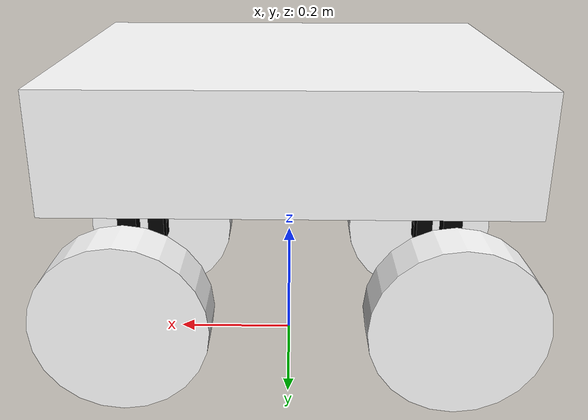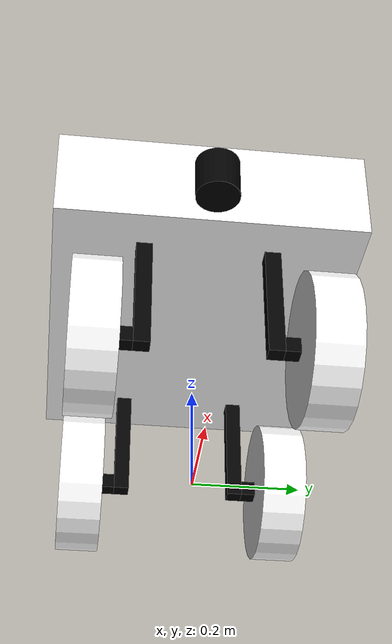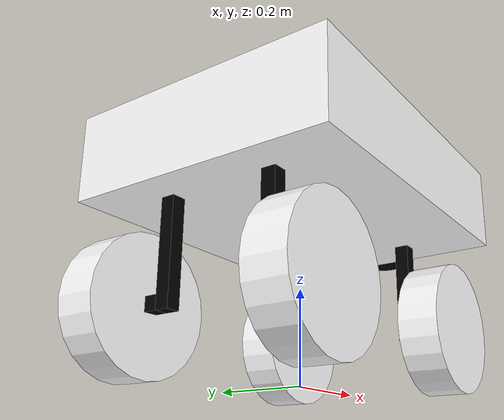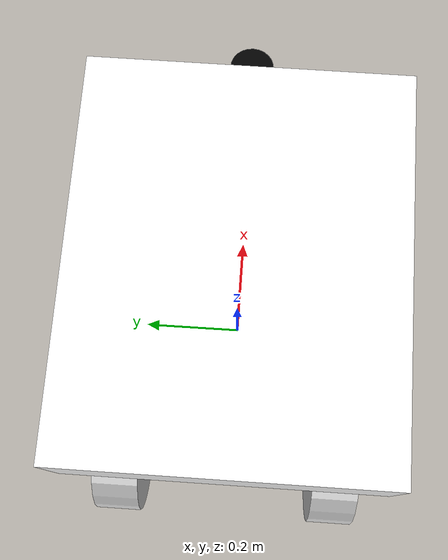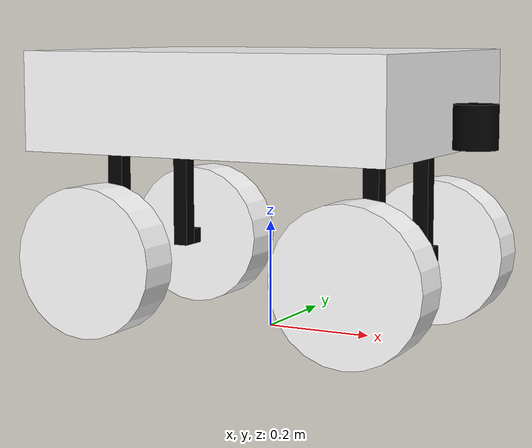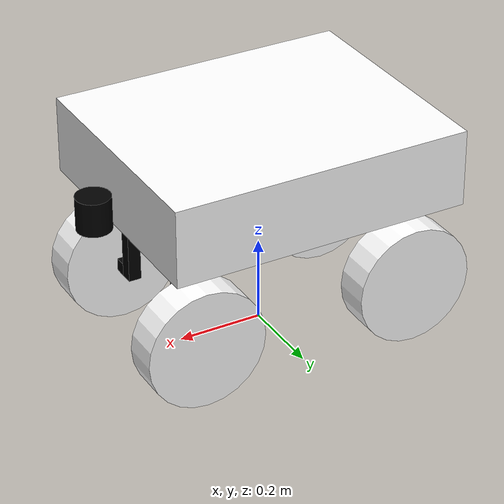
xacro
<?xml version="1.0"?>
<robot name="omnidirectional_four-wheeled_robot" xmlns:xacro="http://www.ros.org/wiki/xacro">
<xacro:property name="x_size" value="0.70"/>			<!-- 整个车的长 -->
<xacro:property name="y_size" value="0.57"/>			<!-- 整个车的宽 -->
<xacro:property name="z_size" value="0.18"/>			<!-- 车体上半身的高度 -->
<xacro:property name="body_mass" value="30.0"/>
<xacro:property name="cylinder_radius" value="0.14"/>	<!-- 轮子的半径 -->
<xacro:property name="cylinder_length" value="0.085"/>	<!-- 轮子的宽度 -->
<xacro:property name="wheel_mass" value="0.5"/>
<xacro:property name="effort_limit" value="1."/>
<xacro:property name="velocity_limit" value="5."/>
<xacro:property name="control_period" value="0.001"/>

<xacro:include filename="$(find robot_description)/urdf/wheel_new.urdf.xacro"/>
<!-- xacro:include filename="$(find omnidirectional_four-wheeled_robot)/urdf/camera.urdf.xacro"/ -->
<!-- xacro:include filename="$(find robot_description)/urdf/laser.urdf.xacro"/ -->
	<link name="base_link"/>
	<joint name="body_base_joint" type="fixed">
		<origin xyz="0. 0. 0.43" rpy="0. 0. 0."/>  <!-- 0.44 = 0.14(轮子半径)+0.22(杆的长度)+0.09(车体上身的一半)-0.03(轮子半径和杆多的一部分) -->
		<parent link="base_link"/>
		<child link="body_link"/>
		<calibration rising="0."/>
		<dynamics damping="0." friction="0."/>
	</joint>
	<link name="body_link">
		<visual>
			<origin xyz="0. 0. 0." rpy="0.0 0.0 0.0" />
			<geometry>
				<box size="${x_size} ${y_size} ${z_size}"/>
			</geometry>
			<material name="White">
				<color rgba="1. 1. 1. 1."/>
			</material>
		</visual>

		<collision>
			<geometry>
				<box size="${x_size} ${y_size} ${z_size}"/>
			</geometry>
		</collision>

		<inertial>
			<origin xyz="0. 0. 0."/>
			<mass value="${body_mass}"/>
			<inertia ixx="${body_mass * (y_size**2 + z_size**2) / 12}" ixy="0." ixz="0."
					 iyy="${body_mass * (x_size**2 + z_size**2) / 12}" iyz="0."
					 izz="${body_mass * (x_size**2 + y_size**2) / 12}"/>
		</inertial>
	</link>

	<joint name="laser_joint" type="fixed">
		<!--origin xyz="${x_size/2 - 0.04} 0. ${z_size/2 + 0.03955}" rpy="0. 0. 0."/-->
		<!-- ${z_size/2 - 0.16} -->
        <origin xyz="${x_size/2 + 0.05} 0. 0.39" rpy="0. 0. 0."/>
		<parent link="base_link"/>
		<child link="laser"/>
		<calibration rising="0."/>
		<dynamics damping="0." friction="0."/>
	</joint>

	<link name="laser">
		<visual>
			<origin xyz="0.0 0.0 0.0" rpy="0.0 0.0 0.0" />
			<geometry>
				<cylinder radius="0.04" length="0.0791"/>
			</geometry>
			<material name="Black">
				<color rgba="0. 0. 0. 1."/>
			</material>
		</visual>

		<collision>
			<geometry>
				<box size="0.05 0.05 0.05"/>
			</geometry>
		</collision>

		<inertial>
			<origin xyz="0. 0. 0."/>
			<mass value="0."/>
			<inertia ixx="0." ixy="0." ixz="0." iyy="0." iyz="0." izz="0."/>
		</inertial>
	</link>

	<!-- x_pos这里的 0.12 = 轮子半径  -->
	<!-- y_pos这里的 0.15 = 0.08(轮子的宽) + 0.03(link2的长) + 0.03(link1的宽) -->
	<!-- y_add这里的0.03 = 管的宽度 -->
	<!-- y_add_2这里的0.055 = 0.015(管长度一半) + 0.04(轮子宽度) -->
	<xacro:wheel_macro suffix="FLwheel" parent="body_link" x_pos="${x_size/2 - 0.09}"  y_pos="${y_size/2 - 0.092 - 0.03 - 0.045}" y_add="0.03" y_add_2="0.055"/>
	<xacro:wheel_macro suffix="FRwheel" parent="body_link" x_pos="${x_size/2 - 0.09}"  y_pos="${-y_size/2 + 0.092 + 0.03 + 0.045}" y_add="-0.03" y_add_2="-0.055"/>
	<xacro:wheel_macro suffix="BLwheel" parent="body_link" x_pos="${-x_size/2 + 0.09}" y_pos="${y_size/2 - 0.092 - 0.03 - 0.045}" y_add="0.03" y_add_2="0.055"/>
	<xacro:wheel_macro suffix="BRwheel" parent="body_link" x_pos="${-x_size/2 + 0.09}" y_pos="${-y_size/2 + 0.092 + 0.03 + 0.045}" y_add="-0.03" y_add_2="-0.055"/>

	<gazebo reference="body_link">
		<selfCollide>false</selfCollide>
		<mu1 value="0.05"/>
		<mu2 value="0.05"/>
	</gazebo>
	<gazebo reference="laser">
		<sensor type="ray" name="laser_sensor">
			<pose>0. 0. 0. 0. 0. 0.</pose>
			<visualize>true</visualize>
			<update_rate>40.</update_rate>
			<ray>
				<scan>
					<horizontal>
						<samples>1080</samples>
						<resolution>0.25</resolution>
						<min_angle>${-3*pi/4}</min_angle>
						<max_angle>${3*pi/4}</max_angle>
					</horizontal>
				</scan>
				<range>
					<min>0.1</min>
					<max>30.</max>
					<resolution>1.e-3</resolution>
				</range>
				<noise>
					<!-- Noise parameters based on published spec for Hokuyo laser 			-->
					<!-- achieving "+-30mm" accuracy at range < 10m.  A mean of 0.0m and 		-->
					<!-- stddev of 0.01m will put 99.7% of samples within 0.03m of the true 	-->
					<!-- reading. 																	-->
					<type>gaussian</type>
					<mean>0.</mean>
					<stddev>1.e-3</stddev>
				</noise>
			</ray>
			<plugin name="gazebo_ros_head_hokuyo_controller" filename="libgazebo_ros_laser.so">
				<topicName>/scan</topicName>
				<frameName>laser</frameName>
			</plugin>
		</sensor>
	</gazebo>
	<gazebo>
		<plugin name="gazebo_ros_control" filename="libgazebo_ros_control.so">
			<controlPeriod>${control_period}</controlPeriod>
			<legacyModeNS>true</legacyModeNS>
			<robotParam>/robot_description</robotParam>
			<robotNamespace>/omnidirectional_four_wheeled_robot</robotNamespace>
			<robotSimType>gazebo_ros_control/DefaultRobotHWSim</robotSimType>
		</plugin>
		<plugin name="imu_plugin" filename="libgazebo_ros_imu.so"> <!-- can delete IMU -->
			<alwaysOn>true</alwaysOn>
			<bodyName>body_link</bodyName>
			<topicName>/imu</topicName>
			<serviceName>imu_service</serviceName>
			<gaussianNoise>1.e-3</gaussianNoise>
			<updateRate>50.</updateRate>
		</plugin>
	</gazebo>
</robot>

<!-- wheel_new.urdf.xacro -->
<robot xmlns:xacro="http://www.ros.org/wiki/xacro">
	<xacro:macro name="wheel_macro" params="suffix parent x_pos y_pos y_add y_add_2">

		<joint name="${suffix}_joint1" type="continuous">
			<origin xyz="${x_pos} ${y_pos} -0.20" rpy="0. 0. 0."/> <!--这里的-0.20 = -0.09(车体上半身的一半) - 0.11(link1管的1半)-->
			<axis xyz="0. 0. 1."/>
			<parent link="${parent}"/>
			<child link="${suffix}_link1"/>

			<calibration rising="0."/>
			<dynamics damping="1." friction="0."/>
			<inertial>
				<origin xyz="${x_pos} ${y_pos} -0.25" rpy="0 0 0"/>
				<mass value="0.1"/>
				<inertia ixx="0.0" ixy="0.0" ixz="0.0" iyy="0.0" iyz="0.0" izz="0.0"/>
			</inertial>
		</joint>

		<link name="${suffix}_link1">
			<visual>
				<origin xyz="0. 0. 0." rpy="0. 0. 0."/>
				<geometry>
					<box size="0.03 0.03 0.22"/>
				</geometry>
				<material name="Black">
					<color rgba="0. 0. 0. 0"/>
				</material>
			</visual>
			<collision>
				<geometry>
					<box size="0.03 0.03 0.22"/>
				</geometry>
			</collision>
			<inertial>
				<origin xyz="0. 0. 0." rpy="0 0 0"/>
				<mass value="0.1"/>
				<inertia ixx="0.1" ixy="0.1" ixz="0.1" iyy="0.1" iyz="0.1" izz="0.1"/>
			</inertial>
		</link>

		<joint name="${suffix}_joint2" type="fixed">
			<origin xyz="0 ${y_add} -0.095" rpy="0. 0. 0."/>
			<parent link="${suffix}_link1"/>
			<child link="${suffix}_link2"/>
			<calibration rising="0."/>
			<dynamics damping="0." friction="0."/>
			<inertial>
				<origin xyz="0 ${y_add} -0.085" rpy="0 0 0"/>
				<mass value="0.1"/>
				<inertia ixx="0.0" ixy="0.0" ixz="0.0" iyy="0.0" iyz="0.0" izz="0.0"/>
			</inertial>
		</joint>

		<link name="${suffix}_link2">
			<visual>
				<origin xyz="0. 0. 0." rpy="0. 0. 0."/>
				<geometry>
					<box size="0.03 0.03 0.03"/>
				</geometry>
				<material name="Black">
					<color rgba="0. 0. 0. 1"/>
				</material>
			</visual>
			<collision>
				<geometry>
					<box size="0.03 0.03 0.03"/>
				</geometry>
			</collision>
			<inertial>
				<origin xyz="0. 0. 0." rpy="0 0 0"/>
				<mass value="0.1"/>
				<inertia ixx="0.1" ixy="0.1" ixz="0.1" iyy="0.1" iyz="0.1" izz="0.1"/>
			</inertial>
		</link>

		<joint name="${suffix}_joint3" type="continuous">
			<origin xyz="0 ${y_add_2} 0" rpy="0. 0. 0."/>
			<axis xyz="0. 1. 0."/>
			<parent link="${suffix}_link2"/>
			<child link="${suffix}_link3"/>
			<calibration rising="0."/>
			<dynamics damping="1." friction="0."/>
			<inertial>
				<origin xyz="0 ${y_add_2} 0" rpy="0 0 0"/>
				<mass value="0.1"/>
				<inertia ixx="0.0" ixy="0.0" ixz="0.0" iyy="0.0" iyz="0.0" izz="0.0"/>
			</inertial>
		</joint>

		<link name="${suffix}_link3">
			<visual>
				<origin xyz="0. 0. 0." rpy="-${pi/2} 0. 0."/>
				<geometry>
					<cylinder radius="${cylinder_radius}" length="${cylinder_length}"/>
				</geometry>
				<material name="White">
					<color rgba="1. 1. 1. 1."/>
				</material>
			</visual>
			<collision>
				<origin xyz="0. 0. 0." rpy="-${pi/2} 0. 0."/>
				<geometry>
					<cylinder radius="${cylinder_radius}" length="${cylinder_length}"/>
				</geometry>
			</collision>
			<inertial>
				<origin xyz="0. 0. 0." rpy="-${pi/2} 0. 0."/>
				<mass value="${wheel_mass}"/>
				<inertia ixx="${wheel_mass * cylinder_radius**2 / 2}" ixy="0." ixz="0."
						  	 iyy="${wheel_mass * (cylinder_radius**2 / 4 + cylinder_length**2 / 12)}" iyz="0."
						 	 	 izz="${wheel_mass * (cylinder_radius**2 / 4 + cylinder_length**2 / 12)}"/>
			</inertial>
		</link>

		<transmission name="${suffix}_trans1">
			<type>transmission_interface/SimpleTransmission</type>
			<joint name="${suffix}_joint1">
				<hardwareInterface>hardware_interface/PositionJointInterface</hardwareInterface>
			</joint>
			<actuator name="${suffix}_motor1">
				<mechanicalReduction>1</mechanicalReduction>
				<hardwareInterface>hardware_interface/PositionJointInterface</hardwareInterface>
			</actuator>
		</transmission>

		<transmission name="${suffix}_trans3">
			<type>transmission_interface/SimpleTransmission</type>
			<joint name="${suffix}_joint3">
				<hardwareInterface>hardware_interface/VelocityJointInterface</hardwareInterface>
			</joint>
			<actuator name="${suffix}_motor3">
				<mechanicalReduction>1</mechanicalReduction>
				<hardwareInterface>hardware_interface/VelocityJointInterface</hardwareInterface>
			</actuator>
		</transmission>

		<gazebo reference="${suffix}_link1">
			<selfCollide>false</selfCollide>
			<mu1 value="0.05"/>
			<mu2 value="0.05"/>
			<material>Gazebo/Black</material>
		</gazebo>

		<gazebo reference="${suffix}_link2">
			<selfCollide>false</selfCollide>
			<mu1 value="0.05"/>
			<mu2 value="0.05"/>
			<material>Gazebo/Black</material>
		</gazebo>

		<gazebo reference="${suffix}_link3">
			<selfCollide>false</selfCollide>
			<mu1 value="0.80"/>
			<mu2 value="0.80"/>
			<material>Gazebo/Black</material>
		</gazebo>
	</xacro:macro>
</robot>
